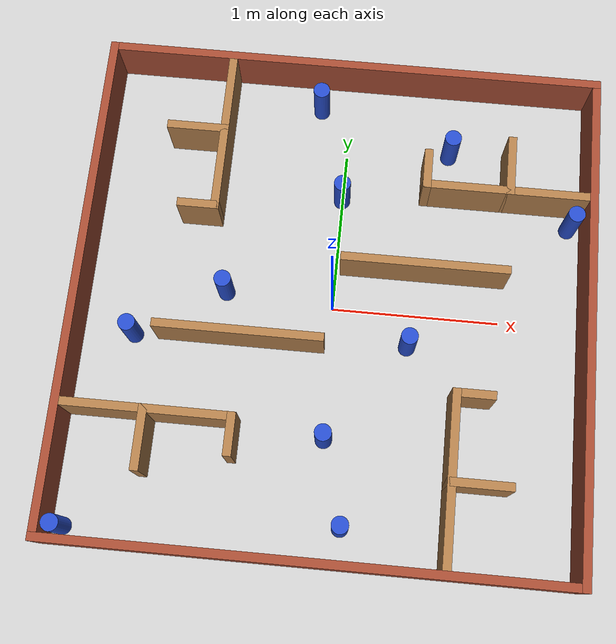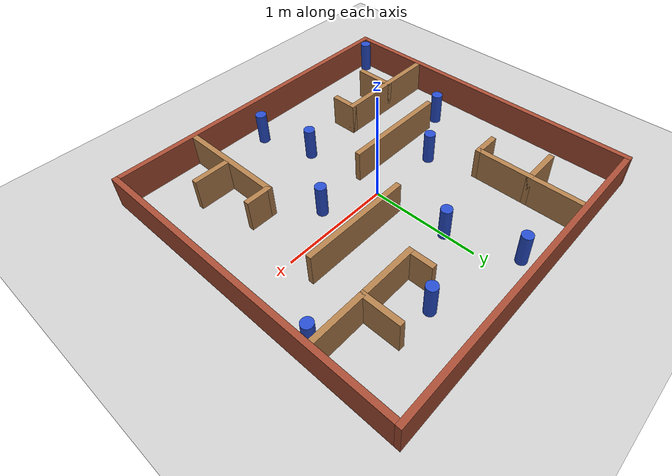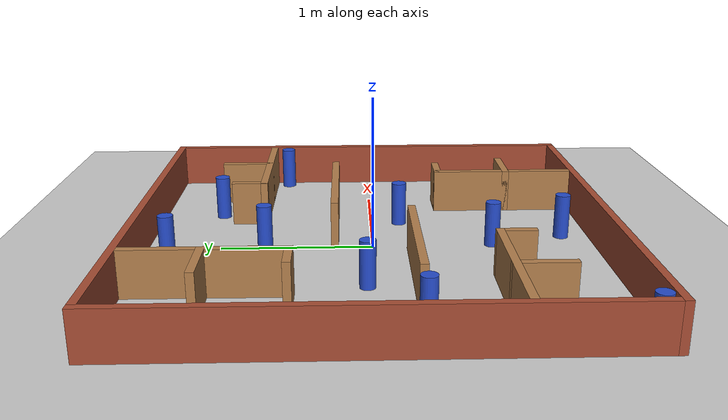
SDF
<sdf version="1.6">
 <world name="default">
  <light name="sun" type="directional">
   <pose>0 0 10 0 -0 0</pose>
   <diffuse>0.8 0.8 0.8 1</diffuse>
   <specular>0.2 0.2 0.2 1</specular>
   <attenuation>
    <range>1000</range>
    <constant>0.9</constant>
    <linear>0.01</linear>
    <quadratic>0.001</quadratic>
   </attenuation>
   <direction>-0.5 0.1 -0.9</direction>
  </light>
  <model name="ground_plane">
   <static>1</static>
   <link name="link">
    <collision name="collision">
     <geometry><plane><normal>0 0 1</normal><size>100 100</size></plane></geometry>
     <surface>
      <contact><collide_bitmask>65535</collide_bitmask></contact>
      <friction><ode><mu>100</mu><mu2>50</mu2></ode></friction>
     </surface>
    </collision>
    <visual name="visual">
     <cast_shadows>0</cast_shadows>
     <geometry><plane><normal>0 0 1</normal><size>100 100</size></plane></geometry>
     <material>
      <script><uri>file://media/materials/scripts/gazebo.material</uri><name>Gazebo/Grey</name></script>
     </material>
    </visual>
   </link>
  </model>
  <gravity>0 0 -9.8</gravity>
  <magnetic_field>6e-06 2.3e-05 -4.2e-05</magnetic_field>
  <atmosphere type="adiabatic"/>
  <physics name="default_physics" default="0" type="ode">
   <max_step_size>0.001</max_step_size>
   <real_time_factor>1</real_time_factor>
   <real_time_update_rate>1000</real_time_update_rate>
  </physics>
  <scene><ambient>0.4 0.4 0.4 1</ambient><background>0.7 0.7 0.7 1</background><shadows>1</shadows></scene>
  <audio><device>default</device></audio>
  <spherical_coordinates>
   <surface_model>EARTH_WGS84</surface_model>
   <latitude_deg>0</latitude_deg>
   <longitude_deg>0</longitude_deg>
   <elevation>0</elevation>
   <heading_deg>0</heading_deg>
  </spherical_coordinates>
  <model name="qmp_maze">
   <link name="Wall_0">
    <collision name="Wall_0_Collision">
     <geometry><box><size>3 0.05 0.3</size></box></geometry>
     <pose>0 0 0.15 0 -0 0</pose>
    </collision>
    <visual name="Wall_0_Visual">
     <pose>0 0 0.15 0 -0 0</pose>
     <geometry><box><size>3 0.05 0.3</size></box></geometry>
     <material>
      <script><uri>file://media/materials/scripts/gazebo.material</uri><name>Gazebo/Bricks</name></script>
      <ambient>1 1 1 1</ambient>
     </material>
     <meta><layer>0</layer></meta>
    </visual>
    <pose>-1.5 0.025 0 0 -0 1.5708</pose>
   </link>
   <link name="Wall_10">
    <collision name="Wall_10_Collision">
     <geometry><box><size>1 0.05 0.3</size></box></geometry>
     <pose>0 0 0.15 0 -0 0</pose>
    </collision>
    <visual name="Wall_10_Visual">
     <pose>0 0 0.15 0 -0 0</pose>
     <geometry><box><size>1 0.05 0.3</size></box></geometry>
     <material>
      <script><uri>file://media/materials/scripts/gazebo.material</uri><name>Gazebo/Wood</name></script>
      <ambient>0.996078 0.47451 0.0196078 1</ambient>
     </material>
     <meta><layer>0</layer></meta>
    </visual>
    <pose>-0.75 0.975 0 0 -0 -1.5708</pose>
   </link>
   <link name="Wall_12">
    <collision name="Wall_12_Collision">
     <geometry><box><size>1 0.05 0.3</size></box></geometry>
     <pose>0 0 0.15 0 -0 0</pose>
    </collision>
    <visual name="Wall_12_Visual">
     <pose>0 0 0.15 0 -0 0</pose>
     <geometry><box><size>1 0.05 0.3</size></box></geometry>
     <material>
      <script><uri>file://media/materials/scripts/gazebo.material</uri><name>Gazebo/Wood</name></script>
      <ambient>0.996078 0.47451 0.0196078 1</ambient>
     </material>
     <meta><layer>0</layer></meta>
    </visual>
    <pose>-0.975 -0.75 0 0 -0 0</pose>
   </link>
   <link name="Wall_14">
    <collision name="Wall_14_Collision">
     <geometry><box><size>1 0.05 0.3</size></box></geometry>
     <pose>0 0 0.15 0 -0 0</pose>
    </collision>
    <visual name="Wall_14_Visual">
     <pose>0 0 0.15 0 -0 0</pose>
     <geometry><box><size>1 0.05 0.3</size></box></geometry>
     <material>
      <script><uri>file://media/materials/scripts/gazebo.material</uri><name>Gazebo/Wood</name></script>
      <ambient>0.996078 0.47451 0.0196078 1</ambient>
     </material>
     <meta><layer>0</layer></meta>
    </visual>
    <pose>0.75 -0.975 0 0 -0 1.5708</pose>
   </link>
   <link name="Wall_16">
    <collision name="Wall_16_Collision">
     <geometry><box><size>0.375 0.05 0.3</size></box></geometry>
     <pose>0 0 0.15 0 -0 0</pose>
    </collision>
    <visual name="Wall_16_Visual">
     <pose>0 0 0.15 0 -0 0</pose>
     <geometry><box><size>0.375 0.05 0.3</size></box></geometry>
     <material>
      <script><uri>file://media/materials/scripts/gazebo.material</uri><name>Gazebo/Wood</name></script>
      <ambient>0.996078 0.47451 0.0196078 1</ambient>
     </material>
     <meta><layer>0</layer></meta>
    </visual>
    <pose>0.9125 -1 0 0 -0 0</pose>
   </link>
   <link name="Wall_18">
    <collision name="Wall_18_Collision">
     <geometry><box><size>0.375 0.05 0.3</size></box></geometry>
     <pose>0 0 0.15 0 -0 0</pose>
    </collision>
    <visual name="Wall_18_Visual">
     <pose>0 0 0.15 0 -0 0</pose>
     <geometry><box><size>0.375 0.05 0.3</size></box></geometry>
     <material>
      <script><uri>file://media/materials/scripts/gazebo.material</uri><name>Gazebo/Wood</name></script>
      <ambient>0.996078 0.47451 0.0196078 1</ambient>
     </material>
     <meta><layer>0</layer></meta>
    </visual>
    <pose>-1 -0.9125 0 0 -0 -1.5708</pose>
   </link>
   <link name="Wall_2">
    <collision name="Wall_2_Collision">
     <geometry><box><size>3 0.05 0.3</size></box></geometry>
     <pose>0 0 0.15 0 -0 0</pose>
    </collision>
    <visual name="Wall_2_Visual">
     <pose>0 0 0.15 0 -0 0</pose>
     <geometry><box><size>3 0.05 0.3</size></box></geometry>
     <material>
      <script><uri>file://media/materials/scripts/gazebo.material</uri><name>Gazebo/Bricks</name></script>
      <ambient>1 1 1 1</ambient>
     </material>
     <meta><layer>0</layer></meta>
    </visual>
    <pose>0.025 1.5 0 0 -0 0</pose>
   </link>
   <link name="Wall_20">
    <collision name="Wall_20_Collision">
     <geometry><box><size>0.375 0.05 0.3</size></box></geometry>
     <pose>0 0 0.15 0 -0 0</pose>
    </collision>
    <visual name="Wall_20_Visual">
     <pose>0 0 0.15 0 -0 0</pose>
     <geometry><box><size>0.375 0.05 0.3</size></box></geometry>
     <material>
      <script><uri>file://media/materials/scripts/gazebo.material</uri><name>Gazebo/Wood</name></script>
      <ambient>0.996078 0.47451 0.0196078 1</ambient>
     </material>
     <meta><layer>0</layer></meta>
    </visual>
    <pose>-0.9125 1 0 0 -0 3.14159</pose>
   </link>
   <link name="Wall_22">
    <collision name="Wall_22_Collision">
     <geometry><box><size>0.375 0.05 0.3</size></box></geometry>
     <pose>0 0 0.15 0 -0 0</pose>
    </collision>
    <visual name="Wall_22_Visual">
     <pose>0 0 0.15 0 -0 0</pose>
     <geometry><box><size>0.375 0.05 0.3</size></box></geometry>
     <material>
      <script><uri>file://media/materials/scripts/gazebo.material</uri><name>Gazebo/Wood</name></script>
      <ambient>0.996078 0.47451 0.0196078 1</ambient>
     </material>
     <meta><layer>0</layer></meta>
    </visual>
    <pose>1 0.9125 0 0 -0 1.5708</pose>
   </link>
   <link name="Wall_24">
    <collision name="Wall_24_Collision">
     <geometry><box><size>0.25 0.05 0.3</size></box></geometry>
     <pose>0 0 0.15 0 -0 0</pose>
    </collision>
    <visual name="Wall_24_Visual">
     <pose>0 0 0.15 0 -0 0</pose>
     <geometry><box><size>0.25 0.05 0.3</size></box></geometry>
     <material>
      <script><uri>file://media/materials/scripts/gazebo.material</uri><name>Gazebo/Wood</name></script>
      <ambient>0.996078 0.47451 0.0196078 1</ambient>
     </material>
     <meta><layer>0</layer></meta>
    </visual>
    <pose>0.85 -0.5 0 0 -0 0</pose>
   </link>
   <link name="Wall_26">
    <collision name="Wall_26_Collision">
     <geometry><box><size>0.25 0.05 0.3</size></box></geometry>
     <pose>0 0 0.15 0 -0 0</pose>
    </collision>
    <visual name="Wall_26_Visual">
     <pose>0 0 0.15 0 -0 0</pose>
     <geometry><box><size>0.25 0.05 0.3</size></box></geometry>
     <material>
      <script><uri>file://media/materials/scripts/gazebo.material</uri><name>Gazebo/Wood</name></script>
      <ambient>0.996078 0.47451 0.0196078 1</ambient>
     </material>
     <meta><layer>0</layer></meta>
    </visual>
    <pose>-0.5 -0.85 0 0 -0 -1.5708</pose>
   </link>
   <link name="Wall_28">
    <collision name="Wall_28_Collision">
     <geometry><box><size>0.25 0.05 0.3</size></box></geometry>
     <pose>0 0 0.15 0 -0 0</pose>
    </collision>
    <visual name="Wall_28_Visual">
     <pose>0 0 0.15 0 -0 0</pose>
     <geometry><box><size>0.25 0.05 0.3</size></box></geometry>
     <material>
      <script><uri>file://media/materials/scripts/gazebo.material</uri><name>Gazebo/Wood</name></script>
      <ambient>0.996078 0.47451 0.0196078 1</ambient>
     </material>
     <meta><layer>0</layer></meta>
    </visual>
    <pose>-0.85 0.5 0 0 -0 3.14159</pose>
   </link>
   <link name="Wall_30">
    <collision name="Wall_30_Collision">
     <geometry><box><size>0.25 0.05 0.3</size></box></geometry>
     <pose>0 0 0.15 0 -0 0</pose>
    </collision>
    <visual name="Wall_30_Visual">
     <pose>0 0 0.15 0 -0 0</pose>
     <geometry><box><size>0.25 0.05 0.3</size></box></geometry>
     <material>
      <script><uri>file://media/materials/scripts/gazebo.material</uri><name>Gazebo/Wood</name></script>
      <ambient>0.996078 0.47451 0.0196078 1</ambient>
     </material>
     <meta><layer>0</layer></meta>
    </visual>
    <pose>0.5 0.85 0 0 -0 1.5708</pose>
   </link>
   <link name="Wall_32">
    <collision name="Wall_32_Collision">
     <geometry><box><size>1 0.05 0.3</size></box></geometry>
     <pose>0 0 0.15 0 -0 0</pose>
    </collision>
    <visual name="Wall_32_Visual">
     <pose>0 0 0.15 0 -0 0</pose>
     <geometry><box><size>1 0.05 0.3</size></box></geometry>
     <material>
      <script><uri>file://media/materials/scripts/gazebo.material</uri><name>Gazebo/Wood</name></script>
      <ambient>0.996078 0.47451 0.0196078 1</ambient>
     </material>
     <meta><layer>0</layer></meta>
    </visual>
    <pose>-0.525 -0.25 0 0 -0 0</pose>
   </link>
   <link name="Wall_34">
    <collision name="Wall_34_Collision">
     <geometry><box><size>1 0.05 0.3</size></box></geometry>
     <pose>0 0 0.15 0 -0 0</pose>
    </collision>
    <visual name="Wall_34_Visual">
     <pose>0 0 0.15 0 -0 0</pose>
     <geometry><box><size>1 0.05 0.3</size></box></geometry>
     <material>
      <script><uri>file://media/materials/scripts/gazebo.material</uri><name>Gazebo/Wood</name></script>
      <ambient>0.996078 0.47451 0.0196078 1</ambient>
     </material>
     <meta><layer>0</layer></meta>
    </visual>
    <pose>0.525 0.25 0 0 -0 0</pose>
   </link>
   <link name="Wall_4">
    <collision name="Wall_4_Collision">
     <geometry><box><size>3 0.05 0.3</size></box></geometry>
     <pose>0 0 0.15 0 -0 0</pose>
    </collision>
    <visual name="Wall_4_Visual">
     <pose>0 0 0.15 0 -0 0</pose>
     <geometry><box><size>3 0.05 0.3</size></box></geometry>
     <material>
      <script><uri>file://media/materials/scripts/gazebo.material</uri><name>Gazebo/Bricks</name></script>
      <ambient>1 1 1 1</ambient>
     </material>
     <meta><layer>0</layer></meta>
    </visual>
    <pose>1.5 -0.025 0 0 -0 -1.5708</pose>
   </link>
   <link name="Wall_6">
    <collision name="Wall_6_Collision">
     <geometry><box><size>3 0.05 0.3</size></box></geometry>
     <pose>0 0 0.15 0 -0 0</pose>
    </collision>
    <visual name="Wall_6_Visual">
     <pose>0 0 0.15 0 -0 0</pose>
     <geometry><box><size>3 0.05 0.3</size></box></geometry>
     <material>
      <script><uri>file://media/materials/scripts/gazebo.material</uri><name>Gazebo/Bricks</name></script>
      <ambient>1 1 1 1</ambient>
     </material>
     <meta><layer>0</layer></meta>
    </visual>
    <pose>-0.025 -1.5 0 0 -0 0</pose>
   </link>
   <link name="Wall_8">
    <collision name="Wall_8_Collision">
     <geometry><box><size>1 0.05 0.3</size></box></geometry>
     <pose>0 0 0.15 0 -0 0</pose>
    </collision>
    <visual name="Wall_8_Visual">
     <pose>0 0 0.15 0 -0 0</pose>
     <geometry><box><size>1 0.05 0.3</size></box></geometry>
     <material>
      <script><uri>file://media/materials/scripts/gazebo.material</uri><name>Gazebo/Wood</name></script>
      <ambient>0.996078 0.47451 0.0196078 1</ambient>
     </material>
     <meta><layer>0</layer></meta>
    </visual>
    <pose>0.975 0.75 0 0 -0 3.14159</pose>
   </link>
   <static>1</static>
  </model>
  <model name="qmp_maze_model">
   <link name="link_1">
    <inertial>
     <mass>0.5</mass>
     <inertia>
      <ixx>0.0040625</ixx>
      <ixy>0</ixy>
      <ixz>0</ixz>
      <iyy>0.0040625</iyy>
      <iyz>0</iyz>
      <izz>0.000625</izz>
     </inertia>
    </inertial>
    <pose>-0.574701 0.06848 0 0 -0 0</pose>
    <visual name="visual">
     <geometry><cylinder><radius>0.05</radius><length>0.3</length></cylinder></geometry>
     <material>
      <lighting>1</lighting>
      <script><uri>file://media/materials/scripts/gazebo.material</uri><name>Gazebo/Blue</name></script>
      <shader type="vertex"><normal_map>__default__</normal_map></shader>
      <ambient>0.3 0.3 0.3 1</ambient>
      <diffuse>0.7 0.7 0.7 1</diffuse>
      <specular>0.01 0.01 0.01 1</specular>
      <emissive>0 0 0 1</emissive>
     </material>
    </visual>
    <collision name="collision">
     <geometry><cylinder><radius>0.05</radius><length>0.3</length></cylinder></geometry>
     <surface>
      <friction>
       <ode><mu>1</mu><mu2>1</mu2><fdir1>0 0 0</fdir1><slip1>0</slip1><slip2>0</slip2></ode>
       <torsional>
        <coefficient>1</coefficient>
        <patch_radius>0</patch_radius>
        <surface_radius>0</surface_radius>
        <use_patch_radius>1</use_patch_radius>
        <ode><slip>0</slip></ode>
       </torsional>
      </friction>
      <bounce><restitution_coefficient>0</restitution_coefficient><threshold>1e+06</threshold></bounce>
      <contact>
       <collide_without_contact>0</collide_without_contact>
       <collide_without_contact_bitmask>1</collide_without_contact_bitmask>
       <collide_bitmask>1</collide_bitmask>
       <ode>
        <soft_cfm>0</soft_cfm>
        <soft_erp>0.2</soft_erp>
        <kp>1e+13</kp>
        <kd>1</kd>
        <max_vel>0.01</max_vel>
        <min_depth>0</min_depth>
       </ode>
       <bullet>
        <split_impulse>1</split_impulse>
        <split_impulse_penetration_threshold>-0.01</split_impulse_penetration_threshold>
        <soft_cfm>0</soft_cfm>
        <soft_erp>0.2</soft_erp>
        <kp>1e+13</kp>
        <kd>1</kd>
       </bullet>
      </contact>
     </surface>
    </collision>
   </link>
   <link name="link_1_clone">
    <inertial>
     <mass>0.5</mass>
     <inertia>
      <ixx>0.0040625</ixx>
      <ixy>0</ixy>
      <ixz>0</ixz>
      <iyy>0.0040625</iyy>
      <iyz>0</iyz>
      <izz>0.000625</izz>
     </inertia>
    </inertial>
    <pose>-0.111304 1.32966 0 0 -0 0</pose>
    <visual name="visual">
     <geometry><cylinder><radius>0.05</radius><length>0.3</length></cylinder></geometry>
     <material>
      <lighting>1</lighting>
      <script><uri>file://media/materials/scripts/gazebo.material</uri><name>Gazebo/Blue</name></script>
      <shader type="vertex"><normal_map>__default__</normal_map></shader>
      <ambient>0.3 0.3 0.3 1</ambient>
      <diffuse>0.7 0.7 0.7 1</diffuse>
      <specular>0.01 0.01 0.01 1</specular>
      <emissive>0 0 0 1</emissive>
     </material>
    </visual>
    <collision name="collision">
     <geometry><cylinder><radius>0.05</radius><length>0.3</length></cylinder></geometry>
     <surface>
      <friction>
       <ode><mu>1</mu><mu2>1</mu2><fdir1>0 0 0</fdir1><slip1>0</slip1><slip2>0</slip2></ode>
       <torsional>
        <coefficient>1</coefficient>
        <patch_radius>0</patch_radius>
        <surface_radius>0</surface_radius>
        <use_patch_radius>1</use_patch_radius>
        <ode><slip>0</slip></ode>
       </torsional>
      </friction>
      <bounce><restitution_coefficient>0</restitution_coefficient><threshold>1e+06</threshold></bounce>
      <contact>
       <collide_without_contact>0</collide_without_contact>
       <collide_without_contact_bitmask>1</collide_without_contact_bitmask>
       <collide_bitmask>1</collide_bitmask>
       <ode>
        <soft_cfm>0</soft_cfm>
        <soft_erp>0.2</soft_erp>
        <kp>1e+13</kp>
        <kd>1</kd>
        <max_vel>0.01</max_vel>
        <min_depth>0</min_depth>
       </ode>
       <bullet>
        <split_impulse>1</split_impulse>
        <split_impulse_penetration_threshold>-0.01</split_impulse_penetration_threshold>
        <soft_cfm>0</soft_cfm>
        <soft_erp>0.2</soft_erp>
        <kp>1e+13</kp>
        <kd>1</kd>
       </bullet>
      </contact>
     </surface>
    </collision>
   </link>
   <link name="link_1_clone_0">
    <inertial>
     <mass>0.5</mass>
     <inertia>
      <ixx>0.0040625</ixx>
      <ixy>0</ixy>
      <ixz>0</ixz>
      <iyy>0.0040625</iyy>
      <iyz>0</iyz>
      <izz>0.000625</izz>
     </inertia>
    </inertial>
    <pose>0.069563 0.727162 0 0 -0 0</pose>
    <visual name="visual">
     <geometry><cylinder><radius>0.05</radius><length>0.3</length></cylinder></geometry>
     <material>
      <lighting>1</lighting>
      <script><uri>file://media/materials/scripts/gazebo.material</uri><name>Gazebo/Blue</name></script>
      <shader type="vertex"><normal_map>__default__</normal_map></shader>
      <ambient>0.3 0.3 0.3 1</ambient>
      <diffuse>0.7 0.7 0.7 1</diffuse>
      <specular>0.01 0.01 0.01 1</specular>
      <emissive>0 0 0 1</emissive>
     </material>
    </visual>
    <collision name="collision">
     <geometry><cylinder><radius>0.05</radius><length>0.3</length></cylinder></geometry>
     <surface>
      <friction>
       <ode><mu>1</mu><mu2>1</mu2><fdir1>0 0 0</fdir1><slip1>0</slip1><slip2>0</slip2></ode>
       <torsional>
        <coefficient>1</coefficient>
        <patch_radius>0</patch_radius>
        <surface_radius>0</surface_radius>
        <use_patch_radius>1</use_patch_radius>
        <ode><slip>0</slip></ode>
       </torsional>
      </friction>
      <bounce><restitution_coefficient>0</restitution_coefficient><threshold>1e+06</threshold></bounce>
      <contact>
       <collide_without_contact>0</collide_without_contact>
       <collide_without_contact_bitmask>1</collide_without_contact_bitmask>
       <collide_bitmask>1</collide_bitmask>
       <ode>
        <soft_cfm>0</soft_cfm>
        <soft_erp>0.2</soft_erp>
        <kp>1e+13</kp>
        <kd>1</kd>
        <max_vel>0.01</max_vel>
        <min_depth>0</min_depth>
       </ode>
       <bullet>
        <split_impulse>1</split_impulse>
        <split_impulse_penetration_threshold>-0.01</split_impulse_penetration_threshold>
        <soft_cfm>0</soft_cfm>
        <soft_erp>0.2</soft_erp>
        <kp>1e+13</kp>
        <kd>1</kd>
       </bullet>
      </contact>
     </surface>
    </collision>
   </link>
   <link name="link_1_clone_1">
    <inertial>
     <mass>0.5</mass>
     <inertia>
      <ixx>0.0040625</ixx>
      <ixy>0</ixy>
      <ixz>0</ixz>
      <iyy>0.0040625</iyy>
      <iyz>0</iyz>
      <izz>0.000625</izz>
     </inertia>
    </inertial>
    <pose>0.232469 -1.26919 0 0 -0 0</pose>
    <visual name="visual">
     <geometry><cylinder><radius>0.05</radius><length>0.3</length></cylinder></geometry>
     <material>
      <lighting>1</lighting>
      <script><uri>file://media/materials/scripts/gazebo.material</uri><name>Gazebo/Blue</name></script>
      <shader type="vertex"><normal_map>__default__</normal_map></shader>
      <ambient>0.3 0.3 0.3 1</ambient>
      <diffuse>0.7 0.7 0.7 1</diffuse>
      <specular>0.01 0.01 0.01 1</specular>
      <emissive>0 0 0 1</emissive>
     </material>
    </visual>
    <collision name="collision">
     <geometry><cylinder><radius>0.05</radius><length>0.3</length></cylinder></geometry>
     <surface>
      <friction>
       <ode><mu>1</mu><mu2>1</mu2><fdir1>0 0 0</fdir1><slip1>0</slip1><slip2>0</slip2></ode>
       <torsional>
        <coefficient>1</coefficient>
        <patch_radius>0</patch_radius>
        <surface_radius>0</surface_radius>
        <use_patch_radius>1</use_patch_radius>
        <ode><slip>0</slip></ode>
       </torsional>
      </friction>
      <bounce><restitution_coefficient>0</restitution_coefficient><threshold>1e+06</threshold></bounce>
      <contact>
       <collide_without_contact>0</collide_without_contact>
       <collide_without_contact_bitmask>1</collide_without_contact_bitmask>
       <collide_bitmask>1</collide_bitmask>
       <ode>
        <soft_cfm>0</soft_cfm>
        <soft_erp>0.2</soft_erp>
        <kp>1e+13</kp>
        <kd>1</kd>
        <max_vel>0.01</max_vel>
        <min_depth>0</min_depth>
       </ode>
       <bullet>
        <split_impulse>1</split_impulse>
        <split_impulse_penetration_threshold>-0.01</split_impulse_penetration_threshold>
        <soft_cfm>0</soft_cfm>
        <soft_erp>0.2</soft_erp>
        <kp>1e+13</kp>
        <kd>1</kd>
       </bullet>
      </contact>
     </surface>
    </collision>
   </link>
   <link name="link_1_clone_2">
    <inertial>
     <mass>0.5</mass>
     <inertia>
      <ixx>0.0040625</ixx>
      <ixy>0</ixy>
      <ixz>0</ixz>
      <iyy>0.0040625</iyy>
      <iyz>0</iyz>
      <izz>0.000625</izz>
     </inertia>
    </inertial>
    <pose>0.09288 -0.774524 0 0 -0 0</pose>
    <visual name="visual">
     <geometry><cylinder><radius>0.05</radius><length>0.3</length></cylinder></geometry>
     <material>
      <lighting>1</lighting>
      <script><uri>file://media/materials/scripts/gazebo.material</uri><name>Gazebo/Blue</name></script>
      <shader type="vertex"><normal_map>__default__</normal_map></shader>
      <ambient>0.3 0.3 0.3 1</ambient>
      <diffuse>0.7 0.7 0.7 1</diffuse>
      <specular>0.01 0.01 0.01 1</specular>
      <emissive>0 0 0 1</emissive>
     </material>
    </visual>
    <collision name="collision">
     <geometry><cylinder><radius>0.05</radius><length>0.3</length></cylinder></geometry>
     <surface>
      <friction>
       <ode><mu>1</mu><mu2>1</mu2><fdir1>0 0 0</fdir1><slip1>0</slip1><slip2>0</slip2></ode>
       <torsional>
        <coefficient>1</coefficient>
        <patch_radius>0</patch_radius>
        <surface_radius>0</surface_radius>
        <use_patch_radius>1</use_patch_radius>
        <ode><slip>0</slip></ode>
       </torsional>
      </friction>
      <bounce><restitution_coefficient>0</restitution_coefficient><threshold>1e+06</threshold></bounce>
      <contact>
       <collide_without_contact>0</collide_without_contact>
       <collide_without_contact_bitmask>1</collide_without_contact_bitmask>
       <collide_bitmask>1</collide_bitmask>
       <ode>
        <soft_cfm>0</soft_cfm>
        <soft_erp>0.2</soft_erp>
        <kp>1e+13</kp>
        <kd>1</kd>
        <max_vel>0.01</max_vel>
        <min_depth>0</min_depth>
       </ode>
       <bullet>
        <split_impulse>1</split_impulse>
        <split_impulse_penetration_threshold>-0.01</split_impulse_penetration_threshold>
        <soft_cfm>0</soft_cfm>
        <soft_erp>0.2</soft_erp>
        <kp>1e+13</kp>
        <kd>1</kd>
       </bullet>
      </contact>
     </surface>
    </collision>
   </link>
   <link name="link_1_clone_3">
    <inertial>
     <mass>0.5</mass>
     <inertia>
      <ixx>0.0040625</ixx>
      <ixy>0</ixy>
      <ixz>0</ixz>
      <iyy>0.0040625</iyy>
      <iyz>0</iyz>
      <izz>0.000625</izz>
     </inertia>
    </inertial>
    <pose>0.536779 -0.178349 0 0 -0 0</pose>
    <visual name="visual">
     <geometry><cylinder><radius>0.05</radius><length>0.3</length></cylinder></geometry>
     <material>
      <lighting>1</lighting>
      <script><uri>file://media/materials/scripts/gazebo.material</uri><name>Gazebo/Blue</name></script>
      <shader type="vertex"><normal_map>__default__</normal_map></shader>
      <ambient>0.3 0.3 0.3 1</ambient>
      <diffuse>0.7 0.7 0.7 1</diffuse>
      <specular>0.01 0.01 0.01 1</specular>
      <emissive>0 0 0 1</emissive>
     </material>
    </visual>
    <collision name="collision">
     <geometry><cylinder><radius>0.05</radius><length>0.3</length></cylinder></geometry>
     <surface>
      <friction>
       <ode><mu>1</mu><mu2>1</mu2><fdir1>0 0 0</fdir1><slip1>0</slip1><slip2>0</slip2></ode>
       <torsional>
        <coefficient>1</coefficient>
        <patch_radius>0</patch_radius>
        <surface_radius>0</surface_radius>
        <use_patch_radius>1</use_patch_radius>
        <ode><slip>0</slip></ode>
       </torsional>
      </friction>
      <bounce><restitution_coefficient>0</restitution_coefficient><threshold>1e+06</threshold></bounce>
      <contact>
       <collide_without_contact>0</collide_without_contact>
       <collide_without_contact_bitmask>1</collide_without_contact_bitmask>
       <collide_bitmask>1</collide_bitmask>
       <ode>
        <soft_cfm>0</soft_cfm>
        <soft_erp>0.2</soft_erp>
        <kp>1e+13</kp>
        <kd>1</kd>
        <max_vel>0.01</max_vel>
        <min_depth>0</min_depth>
       </ode>
       <bullet>
        <split_impulse>1</split_impulse>
        <split_impulse_penetration_threshold>-0.01</split_impulse_penetration_threshold>
        <soft_cfm>0</soft_cfm>
        <soft_erp>0.2</soft_erp>
        <kp>1e+13</kp>
        <kd>1</kd>
       </bullet>
      </contact>
     </surface>
    </collision>
   </link>
   <link name="link_1_clone_4">
    <inertial>
     <mass>0.5</mass>
     <inertia>
      <ixx>0.0040625</ixx>
      <ixy>0</ixy>
      <ixz>0</ixz>
      <iyy>0.0040625</iyy>
      <iyz>0</iyz>
      <izz>0.000625</izz>
     </inertia>
    </inertial>
    <pose>-1.09192 -0.242995 0 0 -0 0</pose>
    <visual name="visual">
     <geometry><cylinder><radius>0.05</radius><length>0.3</length></cylinder></geometry>
     <material>
      <lighting>1</lighting>
      <script><uri>file://media/materials/scripts/gazebo.material</uri><name>Gazebo/Blue</name></script>
      <shader type="vertex"><normal_map>__default__</normal_map></shader>
      <ambient>0.3 0.3 0.3 1</ambient>
      <diffuse>0.7 0.7 0.7 1</diffuse>
      <specular>0.01 0.01 0.01 1</specular>
      <emissive>0 0 0 1</emissive>
     </material>
    </visual>
    <collision name="collision">
     <geometry><cylinder><radius>0.05</radius><length>0.3</length></cylinder></geometry>
     <surface>
      <friction>
       <ode><mu>1</mu><mu2>1</mu2><fdir1>0 0 0</fdir1><slip1>0</slip1><slip2>0</slip2></ode>
       <torsional>
        <coefficient>1</coefficient>
        <patch_radius>0</patch_radius>
        <surface_radius>0</surface_radius>
        <use_patch_radius>1</use_patch_radius>
        <ode><slip>0</slip></ode>
       </torsional>
      </friction>
      <bounce><restitution_coefficient>0</restitution_coefficient><threshold>1e+06</threshold></bounce>
      <contact>
       <collide_without_contact>0</collide_without_contact>
       <collide_without_contact_bitmask>1</collide_without_contact_bitmask>
       <collide_bitmask>1</collide_bitmask>
       <ode>
        <soft_cfm>0</soft_cfm>
        <soft_erp>0.2</soft_erp>
        <kp>1e+13</kp>
        <kd>1</kd>
        <max_vel>0.01</max_vel>
        <min_depth>0</min_depth>
       </ode>
       <bullet>
        <split_impulse>1</split_impulse>
        <split_impulse_penetration_threshold>-0.01</split_impulse_penetration_threshold>
        <soft_cfm>0</soft_cfm>
        <soft_erp>0.2</soft_erp>
        <kp>1e+13</kp>
        <kd>1</kd>
       </bullet>
      </contact>
     </surface>
    </collision>
   </link>
   <link name="link_1_clone_5">
    <inertial>
     <mass>0.5</mass>
     <inertia>
      <ixx>0.0040625</ixx>
      <ixy>0</ixy>
      <ixz>0</ixz>
      <iyy>0.0040625</iyy>
      <iyz>0</iyz>
      <izz>0.000625</izz>
     </inertia>
    </inertial>
    <pose>0.714254 1.08117 0 0 -0 0</pose>
    <visual name="visual">
     <geometry><cylinder><radius>0.05</radius><length>0.3</length></cylinder></geometry>
     <material>
      <lighting>1</lighting>
      <script><uri>file://media/materials/scripts/gazebo.material</uri><name>Gazebo/Blue</name></script>
      <shader type="vertex"><normal_map>__default__</normal_map></shader>
      <ambient>0.3 0.3 0.3 1</ambient>
      <diffuse>0.7 0.7 0.7 1</diffuse>
      <specular>0.01 0.01 0.01 1</specular>
      <emissive>0 0 0 1</emissive>
     </material>
    </visual>
    <collision name="collision">
     <geometry><cylinder><radius>0.05</radius><length>0.3</length></cylinder></geometry>
     <surface>
      <friction>
       <ode><mu>1</mu><mu2>1</mu2><fdir1>0 0 0</fdir1><slip1>0</slip1><slip2>0</slip2></ode>
       <torsional>
        <coefficient>1</coefficient>
        <patch_radius>0</patch_radius>
        <surface_radius>0</surface_radius>
        <use_patch_radius>1</use_patch_radius>
        <ode><slip>0</slip></ode>
       </torsional>
      </friction>
      <bounce><restitution_coefficient>0</restitution_coefficient><threshold>1e+06</threshold></bounce>
      <contact>
       <collide_without_contact>0</collide_without_contact>
       <collide_without_contact_bitmask>1</collide_without_contact_bitmask>
       <collide_bitmask>1</collide_bitmask>
       <ode>
        <soft_cfm>0</soft_cfm>
        <soft_erp>0.2</soft_erp>
        <kp>1e+13</kp>
        <kd>1</kd>
        <max_vel>0.01</max_vel>
        <min_depth>0</min_depth>
       </ode>
       <bullet>
        <split_impulse>1</split_impulse>
        <split_impulse_penetration_threshold>-0.01</split_impulse_penetration_threshold>
        <soft_cfm>0</soft_cfm>
        <soft_erp>0.2</soft_erp>
        <kp>1e+13</kp>
        <kd>1</kd>
       </bullet>
      </contact>
     </surface>
    </collision>
   </link>
   <link name="link_1_clone_6">
    <inertial>
     <mass>0.5</mass>
     <inertia>
      <ixx>0.0040625</ixx>
      <ixy>0</ixy>
      <ixz>0</ixz>
      <iyy>0.0040625</iyy>
      <iyz>0</iyz>
      <izz>0.000625</izz>
     </inertia>
    </inertial>
    <pose>-1.34087 -1.39675 0 0 -0 0</pose>
    <visual name="visual">
     <geometry><cylinder><radius>0.05</radius><length>0.3</length></cylinder></geometry>
     <material>
      <lighting>1</lighting>
      <script><uri>file://media/materials/scripts/gazebo.material</uri><name>Gazebo/Blue</name></script>
      <shader type="vertex"><normal_map>__default__</normal_map></shader>
      <ambient>0.3 0.3 0.3 1</ambient>
      <diffuse>0.7 0.7 0.7 1</diffuse>
      <specular>0.01 0.01 0.01 1</specular>
      <emissive>0 0 0 1</emissive>
     </material>
    </visual>
    <collision name="collision">
     <geometry><cylinder><radius>0.05</radius><length>0.3</length></cylinder></geometry>
     <surface>
      <friction>
       <ode><mu>1</mu><mu2>1</mu2><fdir1>0 0 0</fdir1><slip1>0</slip1><slip2>0</slip2></ode>
       <torsional>
        <coefficient>1</coefficient>
        <patch_radius>0</patch_radius>
        <surface_radius>0</surface_radius>
        <use_patch_radius>1</use_patch_radius>
        <ode><slip>0</slip></ode>
       </torsional>
      </friction>
      <bounce><restitution_coefficient>0</restitution_coefficient><threshold>1e+06</threshold></bounce>
      <contact>
       <collide_without_contact>0</collide_without_contact>
       <collide_without_contact_bitmask>1</collide_without_contact_bitmask>
       <collide_bitmask>1</collide_bitmask>
       <ode>
        <soft_cfm>0</soft_cfm>
        <soft_erp>0.2</soft_erp>
        <kp>1e+13</kp>
        <kd>1</kd>
        <max_vel>0.01</max_vel>
        <min_depth>0</min_depth>
       </ode>
       <bullet>
        <split_impulse>1</split_impulse>
        <split_impulse_penetration_threshold>-0.01</split_impulse_penetration_threshold>
        <soft_cfm>0</soft_cfm>
        <soft_erp>0.2</soft_erp>
        <kp>1e+13</kp>
        <kd>1</kd>
       </bullet>
      </contact>
     </surface>
    </collision>
   </link>
   <link name="link_1_clone_7">
    <inertial>
     <mass>0.5</mass>
     <inertia>
      <ixx>0.0040625</ixx>
      <ixy>0</ixy>
      <ixz>0</ixz>
      <iyy>0.0040625</iyy>
      <iyz>0</iyz>
      <izz>0.000625</izz>
     </inertia>
    </inertial>
    <pose>1.47285 0.655336 0 0 -0 0</pose>
    <visual name="visual">
     <geometry><cylinder><radius>0.05</radius><length>0.3</length></cylinder></geometry>
     <material>
      <lighting>1</lighting>
      <script><uri>file://media/materials/scripts/gazebo.material</uri><name>Gazebo/Blue</name></script>
      <shader type="vertex"><normal_map>__default__</normal_map></shader>
      <ambient>0.3 0.3 0.3 1</ambient>
      <diffuse>0.7 0.7 0.7 1</diffuse>
      <specular>0.01 0.01 0.01 1</specular>
      <emissive>0 0 0 1</emissive>
     </material>
    </visual>
    <collision name="collision">
     <geometry><cylinder><radius>0.05</radius><length>0.3</length></cylinder></geometry>
     <surface>
      <friction>
       <ode><mu>1</mu><mu2>1</mu2><fdir1>0 0 0</fdir1><slip1>0</slip1><slip2>0</slip2></ode>
       <torsional>
        <coefficient>1</coefficient>
        <patch_radius>0</patch_radius>
        <surface_radius>0</surface_radius>
        <use_patch_radius>1</use_patch_radius>
        <ode><slip>0</slip></ode>
       </torsional>
      </friction>
      <bounce><restitution_coefficient>0</restitution_coefficient><threshold>1e+06</threshold></bounce>
      <contact>
       <collide_without_contact>0</collide_without_contact>
       <collide_without_contact_bitmask>1</collide_without_contact_bitmask>
       <collide_bitmask>1</collide_bitmask>
       <ode>
        <soft_cfm>0</soft_cfm>
        <soft_erp>0.2</soft_erp>
        <kp>1e+13</kp>
        <kd>1</kd>
        <max_vel>0.01</max_vel>
        <min_depth>0</min_depth>
       </ode>
       <bullet>
        <split_impulse>1</split_impulse>
        <split_impulse_penetration_threshold>-0.01</split_impulse_penetration_threshold>
        <soft_cfm>0</soft_cfm>
        <soft_erp>0.2</soft_erp>
        <kp>1e+13</kp>
        <kd>1</kd>
       </bullet>
      </contact>
     </surface>
    </collision>
   </link>
   <static>0</static>
   <pose>-0.07367 -0.02013 0.15 0 -0 0</pose>
  </model>
 </world>
</sdf>
